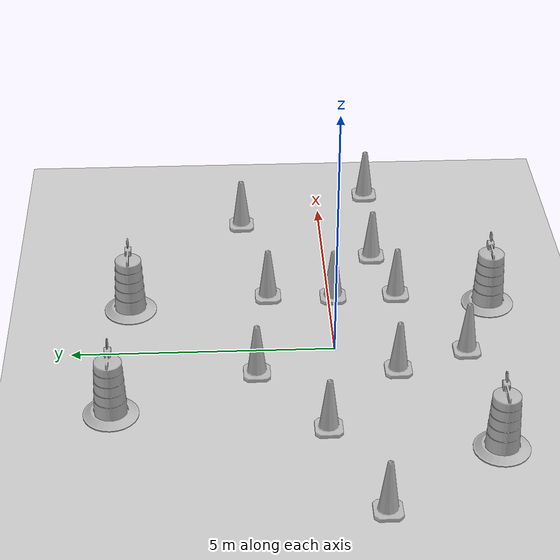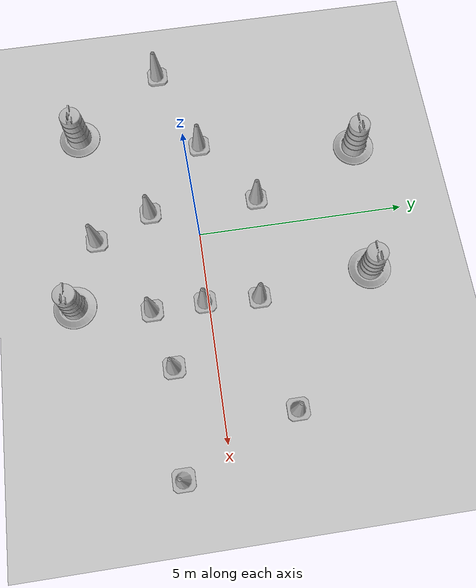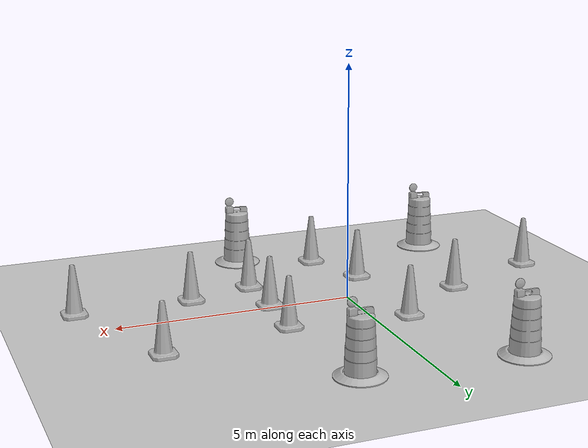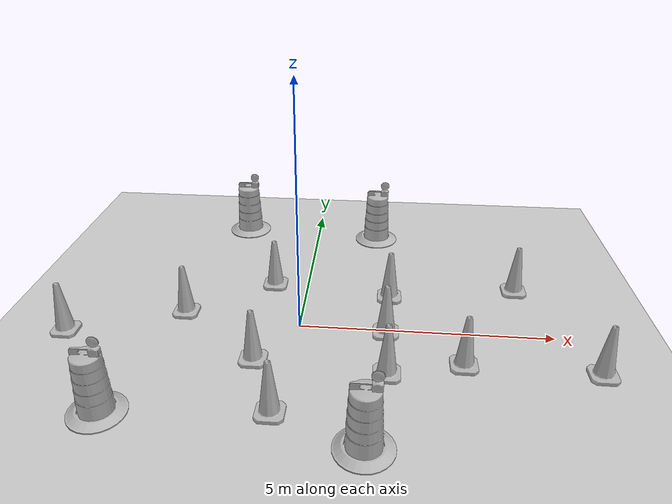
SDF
<sdf version="1.7">
 <world name="default">
  <light name="sun" type="directional">
   <pose>0 0 10 0 -0 0</pose>
   <diffuse>0.8 0.8 0.8 1</diffuse>
   <specular>0.2 0.2 0.2 1</specular>
   <attenuation>
    <range>1000</range>
    <constant>0.9</constant>
    <linear>0.01</linear>
    <quadratic>0.001</quadratic>
   </attenuation>
   <direction>-0.5 0.1 -0.9</direction>
   <spot><inner_angle>0</inner_angle><outer_angle>0</outer_angle><falloff>0</falloff></spot>
  </light>
  <model name="ground_plane">
   <static>1</static>
   <link name="link">
    <collision name="collision">
     <geometry><plane><normal>0 0 1</normal><size>100 100</size></plane></geometry>
     <surface>
      <contact><collide_bitmask>65535</collide_bitmask></contact>
      <friction><ode><mu>100</mu><mu2>50</mu2></ode></friction>
     </surface>
    </collision>
    <visual name="visual">
     <cast_shadows>0</cast_shadows>
     <geometry><plane><normal>0 0 1</normal><size>100 100</size></plane></geometry>
     <material>
      <script><uri>file://media/materials/scripts/gazebo.material</uri><name>Gazebo/Grey</name></script>
     </material>
    </visual>
   </link>
  </model>
  <gravity>0 0 -9.8</gravity>
  <magnetic_field>6e-06 2.3e-05 -4.2e-05</magnetic_field>
  <atmosphere type="adiabatic"/>
  <physics type="ode">
   <max_step_size>0.001</max_step_size>
   <real_time_factor>1</real_time_factor>
   <real_time_update_rate>1000</real_time_update_rate>
  </physics>
  <scene><ambient>0.4 0.4 0.4 1</ambient><background>0.7 0.7 0.7 1</background><shadows>1</shadows></scene>
  <audio><device>default</device></audio>
  <spherical_coordinates>
   <surface_model>EARTH_WGS84</surface_model>
   <latitude_deg>0</latitude_deg>
   <longitude_deg>0</longitude_deg>
   <elevation>0</elevation>
   <heading_deg>0</heading_deg>
  </spherical_coordinates>
  <model name="Construction Barrel">
   <link name="link">
    <inertial>
     <pose>0 0 0.4 0 -0 0</pose>
     <mass>500</mass>
     <inertia><ixx>51.2096</ixx><iyy>51.2096</iyy><izz>25</izz><ixy>0</ixy><ixz>0</ixz><iyz>0</iyz></inertia>
    </inertial>
    <collision name="collision">
     <geometry><mesh><uri>model://construction_barrel/meshes/construction_barrel.dae</uri></mesh></geometry>
    </collision>
    <visual name="visual">
     <geometry><mesh><uri>model://construction_barrel/meshes/construction_barrel.dae</uri></mesh></geometry>
    </visual>
   </link>
   <pose>1.45113 3.91643 -1e-06 5e-06 -3e-06 -2.4e-05</pose>
  </model>
  <model name="Construction Cone">
   <link name="link">
    <collision name="collision">
     <geometry>
      <mesh><scale>10 10 10</scale><uri>model://construction_cone/meshes/construction_cone.dae</uri></mesh>
     </geometry>
    </collision>
    <visual name="visual">
     <geometry>
      <mesh><scale>10 10 10</scale><uri>model://construction_cone/meshes/construction_cone.dae</uri></mesh>
     </geometry>
    </visual>
    <inertial>
     <inertia><ixx>1</ixx><ixy>0</ixy><ixz>0</ixz><iyy>1</iyy><iyz>0</iyz><izz>1</izz></inertia>
     <mass>1</mass>
    </inertial>
   </link>
   <pose>3.14249 -0.984583 -0 0 -0 0</pose>
  </model>
  <model name="Construction Barrel_0">
   <link name="link">
    <inertial>
     <pose>0 0 0.4 0 -0 0</pose>
     <mass>500</mass>
     <inertia><ixx>51.2096</ixx><iyy>51.2096</iyy><izz>25</izz><ixy>0</ixy><ixz>0</ixz><iyz>0</iyz></inertia>
    </inertial>
    <collision name="collision">
     <geometry><mesh><uri>model://construction_barrel/meshes/construction_barrel.dae</uri></mesh></geometry>
    </collision>
    <visual name="visual">
     <geometry><mesh><uri>model://construction_barrel/meshes/construction_barrel.dae</uri></mesh></geometry>
    </visual>
   </link>
   <pose>-1.80831 4.17377 -1e-06 5e-06 -3e-06 -2.2e-05</pose>
  </model>
  <model name="Construction Cone_0">
   <link name="link">
    <collision name="collision">
     <geometry>
      <mesh><scale>10 10 10</scale><uri>model://construction_cone/meshes/construction_cone.dae</uri></mesh>
     </geometry>
    </collision>
    <visual name="visual">
     <geometry>
      <mesh><scale>10 10 10</scale><uri>model://construction_cone/meshes/construction_cone.dae</uri></mesh>
     </geometry>
    </visual>
    <inertial>
     <inertia><ixx>1</ixx><ixy>0</ixy><ixz>0</ixz><iyy>1</iyy><iyz>0</iyz><izz>1</izz></inertia>
     <mass>1</mass>
    </inertial>
   </link>
   <pose>1.73882 -1.34197 -0 0 -0 0</pose>
  </model>
  <model name="Construction Cone_1">
   <link name="link">
    <collision name="collision">
     <geometry>
      <mesh><scale>10 10 10</scale><uri>model://construction_cone/meshes/construction_cone.dae</uri></mesh>
     </geometry>
    </collision>
    <visual name="visual">
     <geometry>
      <mesh><scale>10 10 10</scale><uri>model://construction_cone/meshes/construction_cone.dae</uri></mesh>
     </geometry>
    </visual>
    <inertial>
     <inertia><ixx>1</ixx><ixy>0</ixy><ixz>0</ixz><iyy>1</iyy><iyz>0</iyz><izz>1</izz></inertia>
     <mass>1</mass>
    </inertial>
   </link>
   <pose>-0.724599 -1.13604 -0 0 -0 0</pose>
  </model>
  <model name="Construction Cone_2">
   <link name="link">
    <collision name="collision">
     <geometry>
      <mesh><scale>10 10 10</scale><uri>model://construction_cone/meshes/construction_cone.dae</uri></mesh>
     </geometry>
    </collision>
    <visual name="visual">
     <geometry>
      <mesh><scale>10 10 10</scale><uri>model://construction_cone/meshes/construction_cone.dae</uri></mesh>
     </geometry>
    </visual>
    <inertial>
     <inertia><ixx>1</ixx><ixy>0</ixy><ixz>0</ixz><iyy>1</iyy><iyz>0</iyz><izz>1</izz></inertia>
     <mass>1</mass>
    </inertial>
   </link>
   <pose>1.78227 1.20082 -0 0 -0 0</pose>
  </model>
  <model name="Construction Cone_3">
   <link name="link">
    <collision name="collision">
     <geometry>
      <mesh><scale>10 10 10</scale><uri>model://construction_cone/meshes/construction_cone.dae</uri></mesh>
     </geometry>
    </collision>
    <visual name="visual">
     <geometry>
      <mesh><scale>10 10 10</scale><uri>model://construction_cone/meshes/construction_cone.dae</uri></mesh>
     </geometry>
    </visual>
    <inertial>
     <inertia><ixx>1</ixx><ixy>0</ixy><ixz>0</ixz><iyy>1</iyy><iyz>0</iyz><izz>1</izz></inertia>
     <mass>1</mass>
    </inertial>
   </link>
   <pose>-0.725265 1.50476 -0 0 -0 0</pose>
  </model>
  <model name="Construction Cone_4">
   <link name="link">
    <collision name="collision">
     <geometry>
      <mesh><scale>10 10 10</scale><uri>model://construction_cone/meshes/construction_cone.dae</uri></mesh>
     </geometry>
    </collision>
    <visual name="visual">
     <geometry>
      <mesh><scale>10 10 10</scale><uri>model://construction_cone/meshes/construction_cone.dae</uri></mesh>
     </geometry>
    </visual>
    <inertial>
     <inertia><ixx>1</ixx><ixy>0</ixy><ixz>0</ixz><iyy>1</iyy><iyz>0</iyz><izz>1</izz></inertia>
     <mass>1</mass>
    </inertial>
   </link>
   <pose>-2.39381 0.282063 0 -0 -0 -0</pose>
  </model>
  <model name="Construction Cone_5">
   <link name="link">
    <collision name="collision">
     <geometry>
      <mesh><scale>10 10 10</scale><uri>model://construction_cone/meshes/construction_cone.dae</uri></mesh>
     </geometry>
    </collision>
    <visual name="visual">
     <geometry>
      <mesh><scale>10 10 10</scale><uri>model://construction_cone/meshes/construction_cone.dae</uri></mesh>
     </geometry>
    </visual>
    <inertial>
     <inertia><ixx>1</ixx><ixy>0</ixy><ixz>0</ixz><iyy>1</iyy><iyz>0</iyz><izz>1</izz></inertia>
     <mass>1</mass>
    </inertial>
   </link>
   <pose>1.71266 -0.088815 -0 0 -0 0</pose>
  </model>
  <model name="Construction Cone_6">
   <link name="link">
    <collision name="collision">
     <geometry>
      <mesh><scale>10 10 10</scale><uri>model://construction_cone/meshes/construction_cone.dae</uri></mesh>
     </geometry>
    </collision>
    <visual name="visual">
     <geometry>
      <mesh><scale>10 10 10</scale><uri>model://construction_cone/meshes/construction_cone.dae</uri></mesh>
     </geometry>
    </visual>
    <inertial>
     <inertia><ixx>1</ixx><ixy>0</ixy><ixz>0</ixz><iyy>1</iyy><iyz>0</iyz><izz>1</izz></inertia>
     <mass>1</mass>
    </inertial>
   </link>
   <pose>4.47148 1.65475 0 -0 -0 -0</pose>
  </model>
  <model name="Construction Barrel_1">
   <link name="link">
    <inertial>
     <pose>0 0 0.4 0 -0 0</pose>
     <mass>500</mass>
     <inertia><ixx>51.2096</ixx><iyy>51.2096</iyy><izz>25</izz><ixy>0</ixy><ixz>0</ixz><iyz>0</iyz></inertia>
    </inertial>
    <collision name="collision">
     <geometry><mesh><uri>model://construction_barrel/meshes/construction_barrel.dae</uri></mesh></geometry>
    </collision>
    <visual name="visual">
     <geometry><mesh><uri>model://construction_barrel/meshes/construction_barrel.dae</uri></mesh></geometry>
    </visual>
   </link>
   <pose>1.39623 -3.12931 -2e-06 7e-06 -4e-06 -1e-05</pose>
  </model>
  <model name="Construction Barrel_2">
   <link name="link">
    <inertial>
     <pose>0 0 0.4 0 -0 0</pose>
     <mass>500</mass>
     <inertia><ixx>51.2096</ixx><iyy>51.2096</iyy><izz>25</izz><ixy>0</ixy><ixz>0</ixz><iyz>0</iyz></inertia>
    </inertial>
    <collision name="collision">
     <geometry><mesh><uri>model://construction_barrel/meshes/construction_barrel.dae</uri></mesh></geometry>
    </collision>
    <visual name="visual">
     <geometry><mesh><uri>model://construction_barrel/meshes/construction_barrel.dae</uri></mesh></geometry>
    </visual>
   </link>
   <pose>-3.04666 -2.7126 -0 0 0 -9e-06</pose>
  </model>
  <model name="Construction Cone_7">
   <link name="link">
    <collision name="collision">
     <geometry>
      <mesh><scale>10 10 10</scale><uri>model://construction_cone/meshes/construction_cone.dae</uri></mesh>
     </geometry>
    </collision>
    <visual name="visual">
     <geometry>
      <mesh><scale>10 10 10</scale><uri>model://construction_cone/meshes/construction_cone.dae</uri></mesh>
     </geometry>
    </visual>
    <inertial>
     <inertia><ixx>1</ixx><ixy>0</ixy><ixz>0</ixz><iyy>1</iyy><iyz>0</iyz><izz>1</izz></inertia>
     <mass>1</mass>
    </inertial>
   </link>
   <pose>-0.180839 -2.49702 -0 -0 -0 -0</pose>
  </model>
  <model name="Construction Cone_8">
   <link name="link">
    <collision name="collision">
     <geometry>
      <mesh><scale>10 10 10</scale><uri>model://construction_cone/meshes/construction_cone.dae</uri></mesh>
     </geometry>
    </collision>
    <visual name="visual">
     <geometry>
      <mesh><scale>10 10 10</scale><uri>model://construction_cone/meshes/construction_cone.dae</uri></mesh>
     </geometry>
    </visual>
    <inertial>
     <inertia><ixx>1</ixx><ixy>0</ixy><ixz>0</ixz><iyy>1</iyy><iyz>0</iyz><izz>1</izz></inertia>
     <mass>1</mass>
    </inertial>
   </link>
   <pose>5.59569 -1.05201 -0 0 -1e-06 0</pose>
  </model>
  <model name="Construction Cone_9">
   <link name="link">
    <collision name="collision">
     <geometry>
      <mesh><scale>10 10 10</scale><uri>model://construction_cone/meshes/construction_cone.dae</uri></mesh>
     </geometry>
    </collision>
    <visual name="visual">
     <geometry>
      <mesh><scale>10 10 10</scale><uri>model://construction_cone/meshes/construction_cone.dae</uri></mesh>
     </geometry>
    </visual>
    <inertial>
     <inertia><ixx>1</ixx><ixy>0</ixy><ixz>0</ixz><iyy>1</iyy><iyz>0</iyz><izz>1</izz></inertia>
     <mass>1</mass>
    </inertial>
   </link>
   <pose>-4.59747 -0.553544 -0 0 -0 0</pose>
  </model>
 </world>
</sdf>
